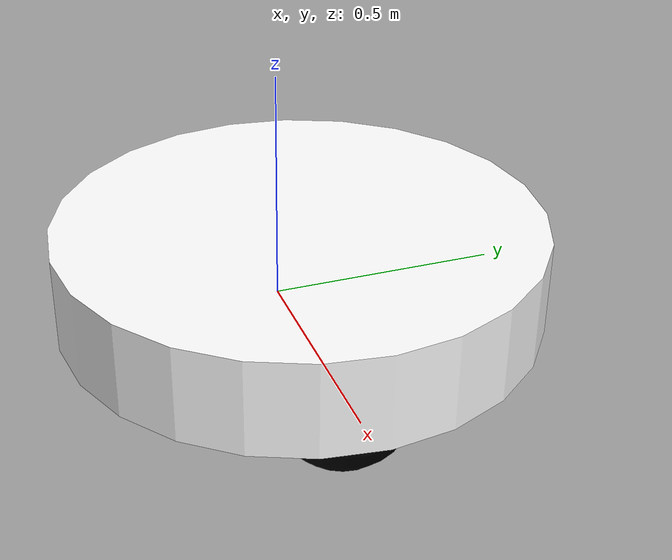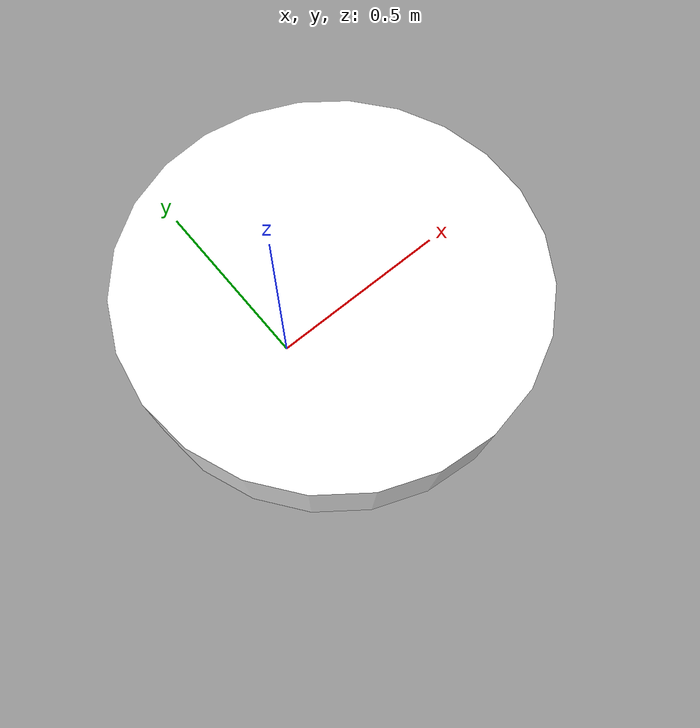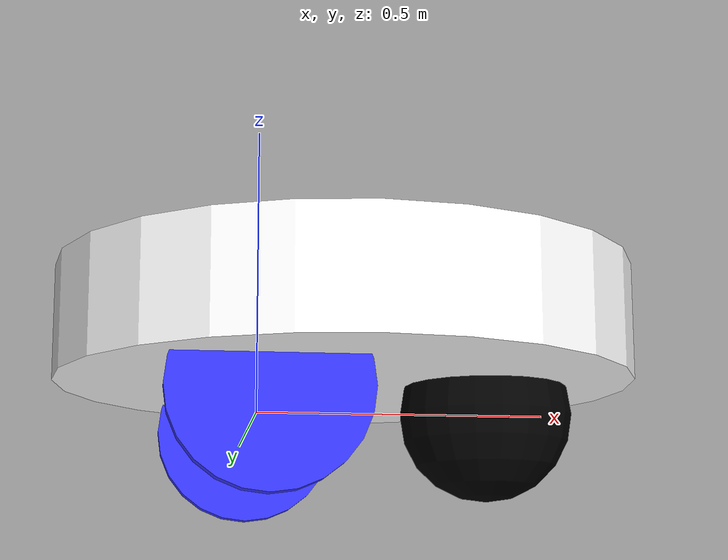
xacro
<?xml version="1.0"?>
<robot xmlns:xacro="http://www.ros.org/wiki/xacro"  >

    <xacro:include filename="inertial_macros.xacro" />

    <material name="white">
        <color rgba="1 1 1 1"/>
    </material>

    <material name="orange">
        <color rgba="1 0.3 0.1 1"/>
    </material>

    <material name="blue">
        <color rgba="0.2 0.2 1 1"/>
    </material>

    <material name="black">
        <color rgba="0 0 0 1"/>
    </material>

    <material name="red">
        <color rgba="1 0 0 1"/>
    </material>

<!--Base LINK -->

    <link name="base_link">

    </link>

<!--CHASSIS LINK-->

<joint name="chassis_joint" type="fixed">
    <parent link="base_link"/>
    <child link="chassis"/>
    <origin xyz="-0.1 0 0"/>
</joint>

<link name="chassis">
    <visual>
        <origin xyz="0.25 0 0.15" rpy="0 0 0"/>
        <geometry>
            <cylinder length="0.2" radius="0.5" />
        </geometry>
        <material name="white"/>
    </visual>
    <collision>
        <origin xyz="0.25 0 0.15" rpy="0 0 0"/>
        <geometry>
            <cylinder length="0.2" radius="0.5" />
        </geometry>
    </collision>
    <xacro:inertial_cylinder mass="0.5" length="0.2" radius="0.5">
        <origin xyz="0.25 0 0.15" rpy="0 0 0"/>
    </xacro:inertial_cylinder>
</link>

<gazebo reference="chassis">
    <material>Gazebo/White</material>
</gazebo>

<!--LEFT WHEEL LINK-->

<joint name="left_wheel_joint" type="continuous">
    <parent link="base_link"/>
    <child link="left_wheel"/>
    <origin xyz="0 0.3 0" rpy="-${pi/2} 0 0"/>
    <axis xyz="0 0 1"/>
</joint>

<link name="left_wheel">
    <visual>
        <geometry>
            <cylinder length="0.04" radius="0.165" />
        </geometry>
        <material name="blue"/>
    </visual>
    <collision>
        <geometry>
            <cylinder length="0.04" radius="0.165" />
        </geometry>
    </collision>
    <xacro:inertial_cylinder mass="0.1" length="0.04" radius="0.165">
        <origin xyz="0 0 0" rpy="0 0 0"/>
    </xacro:inertial_cylinder>
</link>

<gazebo reference="left_wheel">
    <material>Gazebo/Blue</material>
</gazebo>

<!--RIGHT WHEEL LINK-->

<joint name="right_wheel_joint" type="continuous">
    <parent link="base_link"/>
    <child link="right_wheel"/>
    <origin xyz="0 -0.3 0" rpy="${pi/2} 0 0"/>
    <axis xyz="0 0 -1"/>
</joint>

<link name="right_wheel">
    <visual>
        <geometry>
            <cylinder length="0.04" radius="0.165" />
        </geometry>
        <material name="blue"/>
    </visual>
    <collision>
        <geometry>
            <cylinder length="0.04" radius="0.165" />
        </geometry>
    </collision>
    <xacro:inertial_cylinder mass="0.1" length="0.04" radius="0.165">
        <origin xyz="0 0 0" rpy="0 0 0"/>
    </xacro:inertial_cylinder>
</link>

<gazebo reference="right_wheel">
    <material>Gazebo/Blue</material>
</gazebo>

<!-- CASTER WHEEL -->

<joint name="caster_wheel_joint" type="fixed">
    <parent link="chassis"/>
    <child link="caster_wheel"/>
    <origin xyz="0.5 0 0" rpy="0 0 0"/>
</joint>

<link name="caster_wheel">
    <visual>
        <geometry>
            <sphere radius="0.15" />
        </geometry>
        <material name="black"/>
    </visual>
    <collision>
        <geometry>
            <sphere radius="0.15" />
        </geometry>
        <material name="black"/>
    </collision>
    <xacro:inertial_sphere mass="0.1" radius="0.15">
        <origin xyz="0 0 0" rpy="0 0 0"/>
    </xacro:inertial_sphere>
</link>

<gazebo reference="castor_wheel">
    <material>Gazebo/Black</material>
    <mu1 value="0.002"/>
    <mu2 value="0.002"/>
</gazebo>

</robot>
